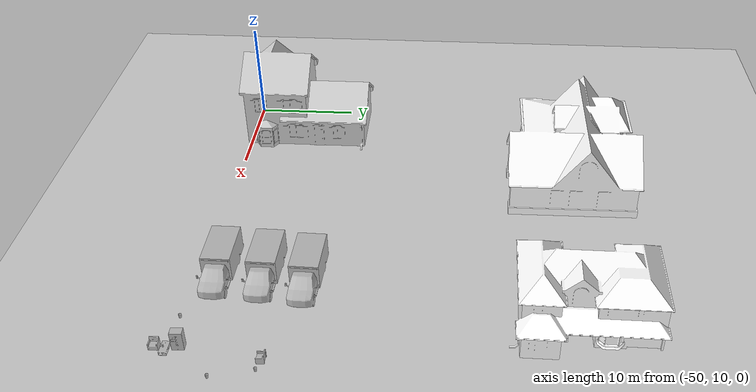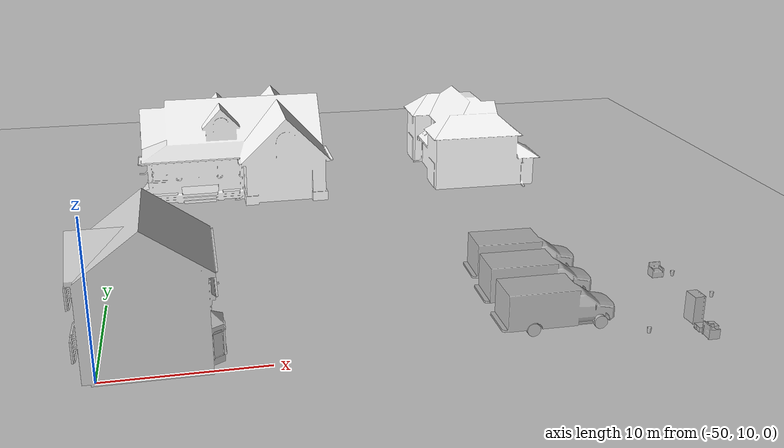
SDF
<sdf version="1.6">
 <world name="default">
  <model name="ground_plane">
   <static>1</static>
   <link name="link">
    <collision name="collision">
     <geometry><plane><normal>0 0 1</normal><size>100 100</size></plane></geometry>
     <surface>
      <contact><collide_bitmask>65535</collide_bitmask></contact>
      <friction><ode><mu>100</mu><mu2>50</mu2></ode></friction>
     </surface>
    </collision>
    <visual name="visual">
     <cast_shadows>0</cast_shadows>
     <geometry><plane><normal>0 0 1</normal><size>100 100</size></plane></geometry>
     <material>
      <script><uri>file://media/materials/scripts/gazebo.material</uri><name>Gazebo/Grey</name></script>
     </material>
    </visual>
   </link>
  </model>
  <model name="aws_robomaker_residential_Trash_01_2">
   <link name="link">
    <inertial>
     <mass>0.1</mass>
     <inertia><ixy>0</ixy><ixz>0</ixz><iyz>0</iyz><ixx>0.05288</ixx><iyy>0.05288</iyy><izz>0.09132</izz></inertia>
    </inertial>
    <collision name="collision">
     <geometry>
      <mesh>
       <uri>model://aws_robomaker_residential_Trash_01/meshes/aws_Trash_01_collision.DAE</uri>
       <scale>1 1 1</scale>
      </mesh>
     </geometry>
    </collision>
    <visual name="visual">
     <geometry>
      <mesh><uri>model://aws_robomaker_residential_Trash_01/meshes/aws_Trash_01_visual.DAE</uri></mesh>
     </geometry>
     <meta><layer>1</layer></meta>
    </visual>
   </link>
   <pose>-10.3057 13.2753 0.000902 -1e-06 1e-06 -8e-06</pose>
  </model>
  <model name="aws_robomaker_residential_Trash_01_19">
   <link name="link">
    <inertial>
     <mass>0.1</mass>
     <inertia><ixy>0</ixy><ixz>0</ixz><iyz>0</iyz><ixx>0.05288</ixx><iyy>0.05288</iyy><izz>0.09132</izz></inertia>
    </inertial>
    <collision name="collision">
     <geometry>
      <mesh>
       <uri>model://aws_robomaker_residential_Trash_01/meshes/aws_Trash_01_collision.DAE</uri>
       <scale>1 1 1</scale>
      </mesh>
     </geometry>
    </collision>
    <visual name="visual">
     <geometry>
      <mesh><uri>model://aws_robomaker_residential_Trash_01/meshes/aws_Trash_01_visual.DAE</uri></mesh>
     </geometry>
     <meta><layer>1</layer></meta>
    </visual>
   </link>
   <pose>-11.2177 16.9621 0.000896 7e-06 5e-06 -8e-06</pose>
  </model>
  <model name="aws_robomaker_residential_Trash_01_20">
   <link name="link">
    <inertial>
     <mass>0.1</mass>
     <inertia><ixy>0</ixy><ixz>0</ixz><iyz>0</iyz><ixx>0.05288</ixx><iyy>0.05288</iyy><izz>0.09132</izz></inertia>
    </inertial>
    <collision name="collision">
     <geometry>
      <mesh>
       <uri>model://aws_robomaker_residential_Trash_01/meshes/aws_Trash_01_collision.DAE</uri>
       <scale>1 1 1</scale>
      </mesh>
     </geometry>
    </collision>
    <visual name="visual">
     <geometry>
      <mesh><uri>model://aws_robomaker_residential_Trash_01/meshes/aws_Trash_01_visual.DAE</uri></mesh>
     </geometry>
     <meta><layer>1</layer></meta>
    </visual>
   </link>
   <pose>-16.7751 9.36846 0.000896 8e-06 -1e-06 -7e-06</pose>
  </model>
  <model name="ambulance">
   <static>1</static>
   <link name="link">
    <collision name="collision">
     <geometry>
      <mesh><scale>0.0254 0.0254 0.0254</scale><uri>model://ambulance/meshes/ambulance.obj</uri></mesh>
     </geometry>
    </collision>
    <visual name="visual">
     <geometry>
      <mesh><scale>0.0254 0.0254 0.0254</scale><uri>model://ambulance/meshes/ambulance.obj</uri></mesh>
     </geometry>
    </visual>
   </link>
   <pose>-22.117 15.6556 0 0 -0 1.55508</pose>
  </model>
  <model name="ambulance_0">
   <static>1</static>
   <link name="link">
    <collision name="collision">
     <geometry>
      <mesh><scale>0.0254 0.0254 0.0254</scale><uri>model://ambulance/meshes/ambulance.obj</uri></mesh>
     </geometry>
    </collision>
    <visual name="visual">
     <geometry>
      <mesh><scale>0.0254 0.0254 0.0254</scale><uri>model://ambulance/meshes/ambulance.obj</uri></mesh>
     </geometry>
    </visual>
   </link>
   <pose>-21.7592 19.4927 0 0 -0 1.5461</pose>
  </model>
  <model name="ambulance_2">
   <static>1</static>
   <link name="link">
    <collision name="collision">
     <geometry>
      <mesh><scale>0.0254 0.0254 0.0254</scale><uri>model://ambulance/meshes/ambulance.obj</uri></mesh>
     </geometry>
    </collision>
    <visual name="visual">
     <geometry>
      <mesh><scale>0.0254 0.0254 0.0254</scale><uri>model://ambulance/meshes/ambulance.obj</uri></mesh>
     </geometry>
    </visual>
   </link>
   <pose>-22.3032 11.6031 0 0 -0 1.56957</pose>
  </model>
  <model name="House 1_2">
   <static>1</static>
   <link name="link">
    <collision name="collision">
     <geometry><mesh><uri>model://house_1/meshes/house_1.dae</uri><scale>1.5 1.5 1.5</scale></mesh></geometry>
    </collision>
    <visual name="visual">
     <geometry><mesh><uri>model://house_1/meshes/house_1.dae</uri><scale>1.5 1.5 1.5</scale></mesh></geometry>
     <material>
      <script>
       <uri>model://house_1/materials/scripts</uri>
       <uri>model://house_1/materials/textures</uri>
       <name>House_1/Diffuse</name>
      </script>
      <shader type="normal_map_tangent_space"><normal_map>House_1_Normal.png</normal_map></shader>
     </material>
    </visual>
   </link>
   <pose>-39.9545 44.0568 0 0 -0 0.007475</pose>
  </model>
  <model name="House 2_1">
   <static>1</static>
   <link name="link">
    <collision name="collision">
     <geometry><mesh><uri>model://house_2/meshes/house_2.dae</uri><scale>1.5 1.5 1.5</scale></mesh></geometry>
    </collision>
    <visual name="visual">
     <geometry><mesh><uri>model://house_2/meshes/house_2.dae</uri><scale>1.5 1.5 1.5</scale></mesh></geometry>
     <material>
      <script>
       <uri>model://house_2/materials/scripts</uri>
       <uri>model://house_2/materials/textures</uri>
       <uri>model://house_1/materials/textures</uri>
       <name>House_2/Diffuse</name>
      </script>
      <shader type="normal_map_tangent_space">
       <normal_map>model://house_1/materials/textures/House_1_Normal.png</normal_map>
      </shader>
     </material>
    </visual>
   </link>
   <pose>-18.9766 44.7879 0 0 0 -1.57987</pose>
  </model>
  <model name="House 3_1">
   <static>1</static>
   <link name="link">
    <collision name="collision">
     <geometry><mesh><uri>model://house_3/meshes/house_3.dae</uri><scale>1.5 1.5 1.5</scale></mesh></geometry>
    </collision>
    <visual name="visual">
     <geometry><mesh><uri>model://house_3/meshes/house_3.dae</uri><scale>1.5 1.5 1.5</scale></mesh></geometry>
     <material>
      <script>
       <uri>model://house_3/materials/scripts</uri>
       <uri>model://house_3/materials/textures</uri>
       <uri>model://house_1/materials/textures</uri>
       <name>House_3/Diffuse</name>
      </script>
      <shader type="normal_map_tangent_space">
       <normal_map>model://house_1/materials/textures/House_1_Normal.png</normal_map>
      </shader>
     </material>
    </visual>
   </link>
   <pose>-46.9383 16.4218 0 0 -0 1.57263</pose>
  </model>
  <model name="aws_robomaker_residential_CoffeeTable_01">
   <link name="link">
    <inertial>
     <mass>21.7</mass>
     <inertia><ixx>0.81375</ixx><ixy>0</ixy><ixz>0</ixz><iyy>2.76675</iyy><iyz>0</iyz><izz>3.254</izz></inertia>
    </inertial>
    <collision name="collision">
     <geometry>
      <mesh>
       <uri>model://aws_robomaker_residential_CoffeeTable_01/meshes/aws_CoffeeTable_01_collision.DAE</uri>
       <scale>1 1 1</scale>
      </mesh>
     </geometry>
     <surface><contact><ode><max_vel>0.01</max_vel></ode></contact></surface>
    </collision>
    <visual name="visual">
     <geometry>
      <mesh><uri>model://aws_robomaker_residential_CoffeeTable_01/meshes/aws_CoffeeTable_01_visual.DAE</uri></mesh>
     </geometry>
     <meta><layer>1</layer></meta>
    </visual>
   </link>
   <static>1</static>
   <pose>-13.0635 9.09144 0 0 -0 0</pose>
  </model>
  <model name="aws_robomaker_residential_Refrigerator_01">
   <link name="link">
    <inertial><mass>1</mass></inertial>
    <collision name="collision">
     <geometry>
      <mesh>
       <uri>model://aws_robomaker_residential_Refrigerator_01/meshes/aws_Refrigerator_01_collision.DAE</uri>
       <scale>1 1 1</scale>
      </mesh>
     </geometry>
    </collision>
    <visual name="visual">
     <geometry>
      <mesh>
       <uri>model://aws_robomaker_residential_Refrigerator_01/meshes/aws_Refrigerator_01_visual.DAE</uri>
      </mesh>
     </geometry>
     <meta><layer>1</layer></meta>
    </visual>
   </link>
   <static>1</static>
   <pose>-13.2773 10.2243 0 0 -0 1.63261</pose>
  </model>
  <model name="aws_robomaker_residential_SofaB_01">
   <link name="link">
    <inertial>
     <mass>72.5</mass>
     <inertia><ixx>1</ixx><ixy>0</ixy><ixz>0</ixz><iyy>1</iyy><iyz>0</iyz><izz>1</izz></inertia>
    </inertial>
    <collision name="collision">
     <geometry>
      <mesh>
       <uri>model://aws_robomaker_residential_SofaB_01/meshes/aws_SofaB_01_collision.DAE</uri>
       <scale>1 1 1</scale>
      </mesh>
     </geometry>
    </collision>
    <visual name="visual">
     <geometry>
      <mesh><uri>model://aws_robomaker_residential_SofaB_01/meshes/aws_SofaB_01_visual.DAE</uri></mesh>
     </geometry>
     <meta><layer>1</layer></meta>
    </visual>
   </link>
   <pose>-13.2796 8.16909 -0.000156 -0 -0.000437 2.5e-05</pose>
  </model>
  <model name="aws_robomaker_residential_SofaB_01_0">
   <link name="link">
    <inertial>
     <mass>72.5</mass>
     <inertia><ixx>1</ixx><ixy>0</ixy><ixz>0</ixz><iyy>1</iyy><iyz>0</iyz><izz>1</izz></inertia>
    </inertial>
    <collision name="collision">
     <geometry>
      <mesh>
       <uri>model://aws_robomaker_residential_SofaB_01/meshes/aws_SofaB_01_collision.DAE</uri>
       <scale>1 1 1</scale>
      </mesh>
     </geometry>
    </collision>
    <visual name="visual">
     <geometry>
      <mesh><uri>model://aws_robomaker_residential_SofaB_01/meshes/aws_SofaB_01_visual.DAE</uri></mesh>
     </geometry>
     <meta><layer>1</layer></meta>
    </visual>
   </link>
   <pose>-12.3701 17.1862 -0.000156 0 -0.000437 -1.57516</pose>
  </model>
  <model name="beer">
   <link name="link">
    <pose>0 0 0.115 0 -0 0</pose>
    <inertial>
     <mass>0.39</mass>
     <inertia><ixx>0.00058</ixx><ixy>0</ixy><ixz>0</ixz><iyy>0.00058</iyy><iyz>0</iyz><izz>0.00019</izz></inertia>
    </inertial>
    <collision name="collision">
     <geometry><cylinder><radius>0.055</radius><length>0.23</length></cylinder></geometry>
    </collision>
    <visual name="visual">
     <geometry><cylinder><radius>0.055</radius><length>0.23</length></cylinder></geometry>
     <material>
      <script>
       <uri>model://beer/materials/scripts</uri>
       <uri>model://beer/materials/textures</uri>
       <name>Beer/Diffuse</name>
      </script>
     </material>
    </visual>
   </link>
   <pose>-13.0497 9.0014 0.323755 -1.3e-05 1.6e-05 -0.001831</pose>
  </model>
 </world>
</sdf>
